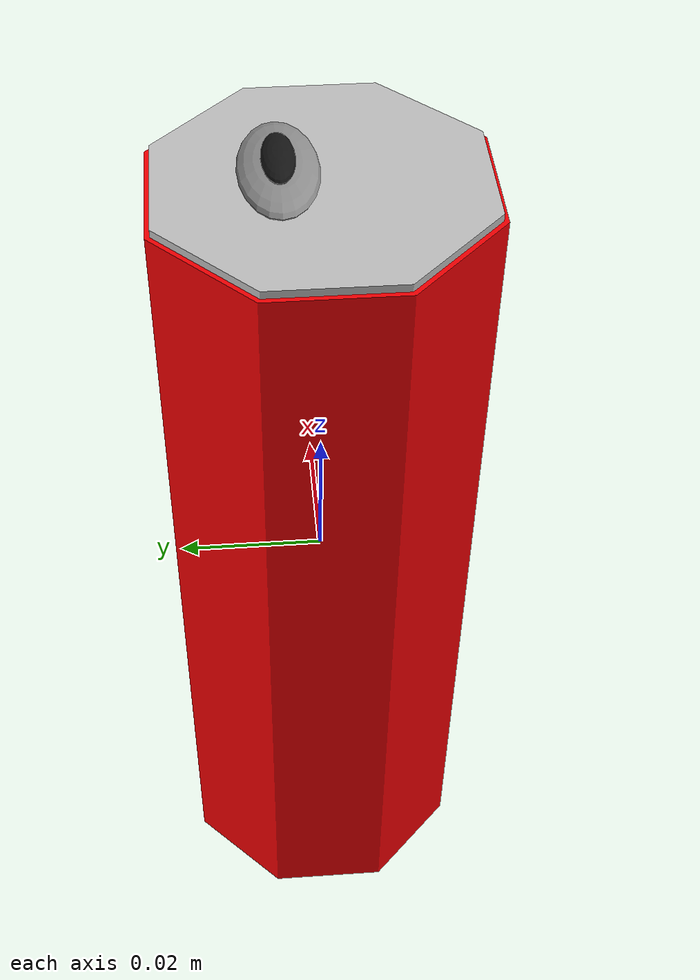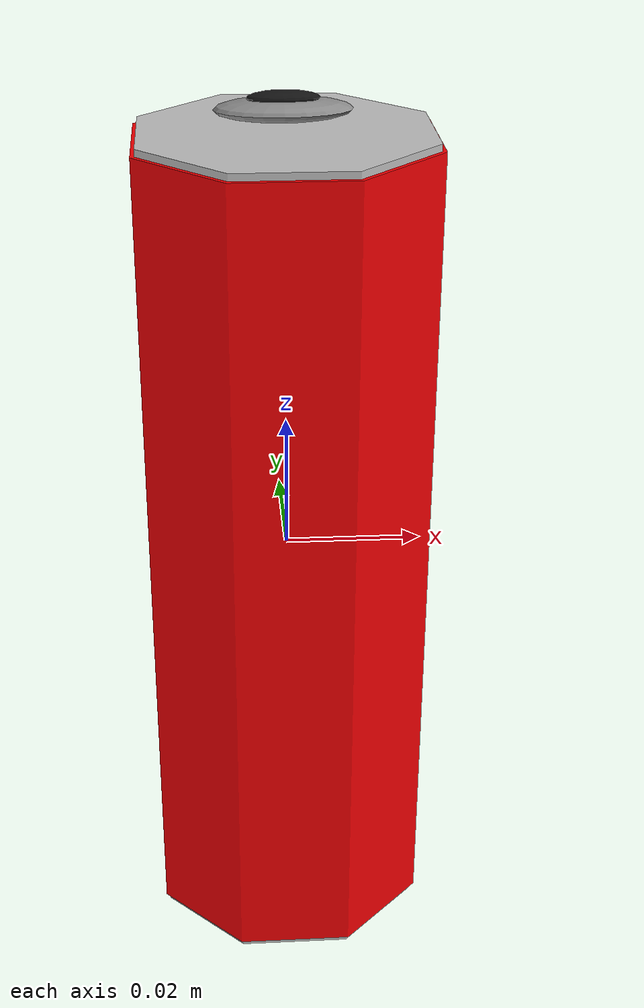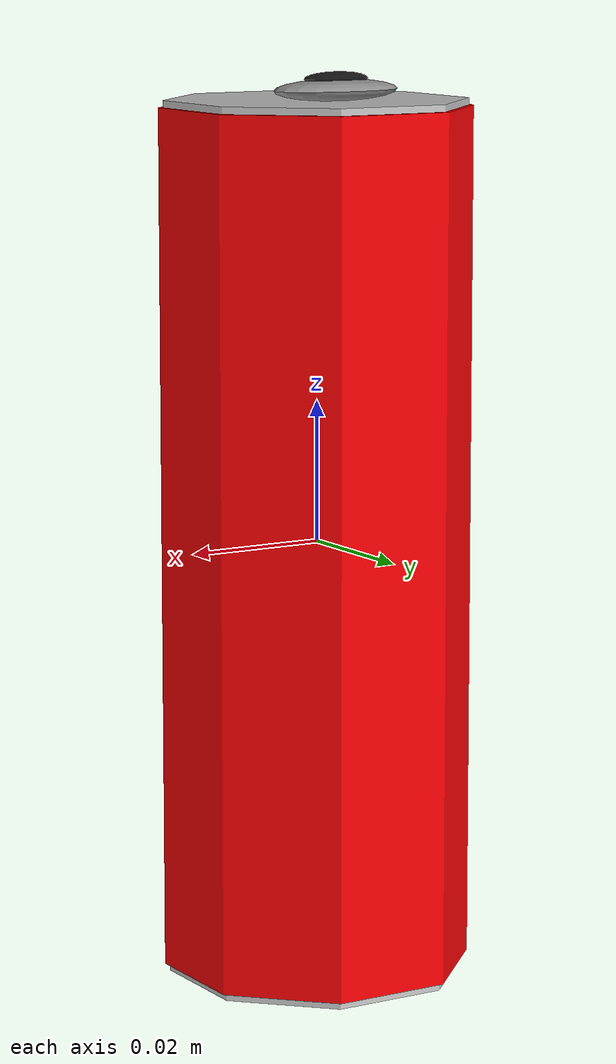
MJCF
<mujoco model="octagonal_coke_can">
  <asset>
    <mesh name="body_mesh" file="octagonal_coke_can.obj" />
    <mesh name="lid_mesh" file="octagonal_coke_can.obj" scale="0.97 0.97 0.01639344" />
  </asset>
  <worldbody>
    <body>
      <body name="object">
        <geom name="body" type="mesh" mesh="body_mesh" group="0" density="900" friction="0.95 0.3 0.1" condim="4" solref="0.001 1" solimp="0.998 0.998 0.001" rgba="0.95 0 0.01 1" />
        <geom name="body_visual" type="mesh" mesh="body_mesh" group="1" contype="0" conaffinity="0" mass="1e-8" rgba="0.95 0 0.01 1" />
        <geom name="top" type="mesh" mesh="lid_mesh" pos="0 0 0.061" group="1" contype="0" conaffinity="0" mass="1e-8" rgba="0.75 0.75 0.75 1" />
        <geom name="bottom" type="mesh" mesh="lid_mesh" pos="0 0 -0.061" group="1" contype="0" conaffinity="0" mass="1e-8" rgba="0.75 0.75 0.75 1" />
        <geom name="pull_tab" type="ellipsoid" size="0.0095 0.0048 0.0015" pos="0 0.005 0.0635" group="1" contype="0" conaffinity="0" mass="1e-8" rgba="0.55 0.55 0.55 1" />
        <geom name="pull_tab_opening" type="ellipsoid" size="0.005 0.002 0.001" pos="0 0.005 0.065" group="1" contype="0" conaffinity="0" mass="1e-8" rgba="0.08 0.08 0.08 1" />
      </body>
      <site name="bottom_site" pos="0 0 -0.061" size="0.005" rgba="0 0 0 0" />
      <site name="top_site" pos="0 0 0.066" size="0.005" rgba="0 0 0 0" />
      <site name="horizontal_radius_site" pos="0.022 0 0" size="0.005" rgba="0 0 0 0" />
    </body>
  </worldbody>
</mujoco>
